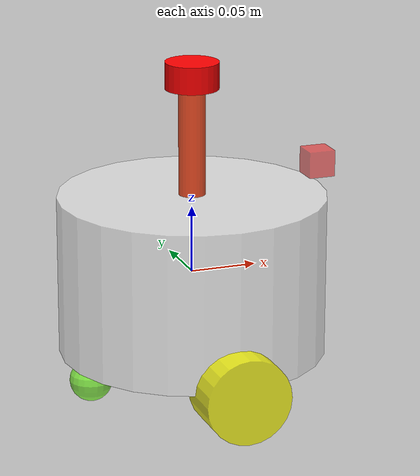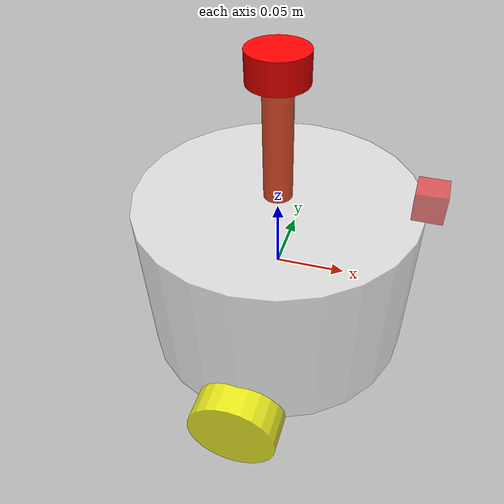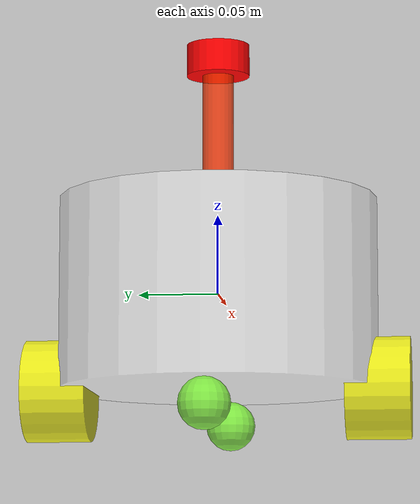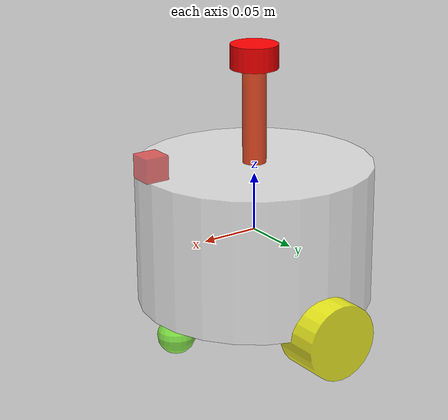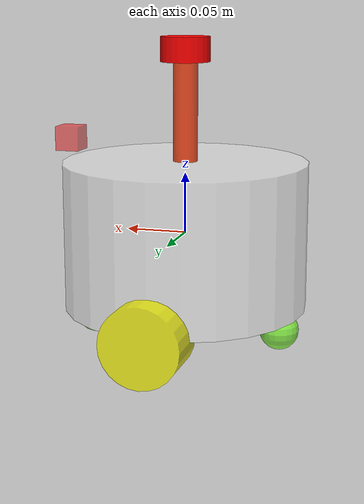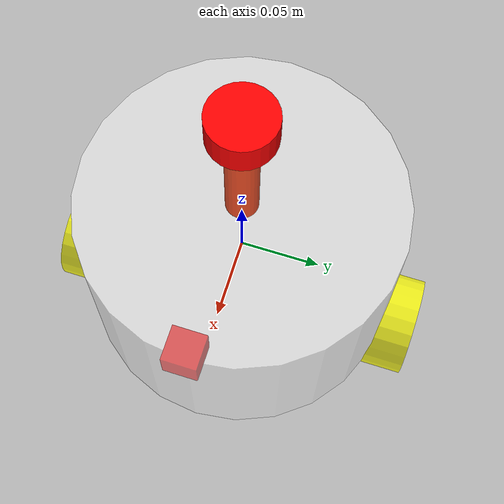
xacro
<?xml version="1.0"?>
<robot xmlns:xacro="http://www.ros.org/wiki/xacro" name="ano_robo">

    <!--find 加包名字-->
    <xacro:include filename="$(find my_robo_description)/URDF/base.urdf.xacro"/>
    <!--传感器组建-->
    <xacro:include filename="$(find my_robo_description)/URDF/sensor/camera.urdf.xacro"/>
    <xacro:include filename="$(find my_robo_description)/URDF/sensor/imu.urdf.xacro"/>
    <xacro:include filename="$(find my_robo_description)/URDF/sensor/lidar.urdf.xacro"/>
    <!--执行部分  2个轮子 2个万向轮-->
    <xacro:include filename="$(find my_robo_description)/URDF/body_/wheel.urdf.xacro"/>
    <xacro:include filename="$(find my_robo_description)/URDF/body_/wheel_wangxianglun.urdf.xacro"/>

    <xacro:base_xacro length="0.12" radius="0.1"/>
    <!--传感器-->
    <xacro:imu_xacro xyz="0 0 0.02"/>
    <xacro:lidar_xacro xyz="0 0 0.1"/>
    <xacro:camera_xacro xyz="0.1 0 0.075"/>
    <xacro:wheel_xacro wheel_name="left_wheel" xyz="0 0.1 -0.06"/>
    <xacro:wheel_xacro wheel_name="right_wheel" xyz="0 -0.1 -0.06"/>
    <xacro:wheel_wangxianglun_xacro wheel_wangxianglun_name="right_wangxianglun_name" xyz="0.08 0 -0.076"/>
    <xacro:wheel_wangxianglun_xacro wheel_wangxianglun_name="left_wangxianglun_name" xyz="-0.08 0 -0.076"/>

</robot>

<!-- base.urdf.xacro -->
<robot xmlns:xacro="http://www.ros.org/wiki/xacro" >
    <!-- 定义 base_link 宏 -->
    <xacro:macro name="base_xacro" params="length radius">
        <!-- 机器人的身体部分 -->
        <link name="base_link">
            <!-- 部件的外观描述 -->
            <visual>
                <!-- 沿着自己几何中心的偏移旋转量 -->
                <origin xyz="0.0 0.0 0.0" rpy="0.0 0.0 0.0"/>
                <!-- 几何形状 -->
                <geometry>
                    <!-- 圆柱体 半径0.1 高度 0.12 -->
                    <cylinder radius="${radius}" length="${length}"/>
                </geometry>
                <!-- 材质 颜色描述 -->
                <material name="white">
                    <!-- 设置透明为 0.5 -->
                    <color rgba="1.0 1.0 1.0 0.5"/>
                </material>
            </visual>
        </link>
    </xacro:macro>
</robot>

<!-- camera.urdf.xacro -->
<robot xmlns:xacro="http://www.ros.org/wiki/xacro" >
    <!-- 定义 imu_link 宏 -->
    <xacro:macro name="camera_xacro" params=" xyz">
        <!-- 机器人IMU 部件 惯性测量单元传感器 -->
        <link name="camera_link">
            <!-- 部件的外观描述 -->
            <visual>
                <!-- 沿着自己几何中心的偏移旋转量 -->
                <origin xyz="0.0 0.0 0.0" rpy="0.0 0.0 0.0"/>
                <!-- 几何形状 -->
                <geometry>
                    <!-- box 自己自动生成的 正方体 -->
                    <box size="0.02 0.02 0.02"/>
                </geometry>
                <!-- 材质 颜色描述 -->
                <material name="red">
                    <!-- 设置透明为 0.5 -->
                    <color rgba="1.0 0.0 0.0 0.5"/>
                </material>
            </visual>
            <collision>
                 <!-- 沿着自己几何中心的偏移旋转量 -->
                <origin xyz="0.0 0.0 0.0" rpy="0.0 0.0 0.0"/>
                <!-- 几何形状 -->
                <geometry>
                    <!-- box 自己自动生成的 正方体 -->
                    <box size="0.02 0.02 0.02"/>
                </geometry>
                <!-- 材质 颜色描述 -->
                <material name="red">
                    <!-- 设置透明为 0.5 -->
                    <color rgba="1.0 0.0 0.0 0.5"/>
                </material>
            </collision>
        </link>
        <!-- 机器人的关节 用于组合机器人的部件 -->
        <joint name="camera_joint" type="fixed">
            <parent link="base_link"/>
            <child link="camera_link"/>
            <origin xyz="${xyz}" rpy="0.0 0.0 0.0"/>
        </joint>
    </xacro:macro>
</robot>

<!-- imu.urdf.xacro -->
<robot xmlns:xacro="http://www.ros.org/wiki/xacro" >
    <!-- 定义 imu_link 宏 -->
    <xacro:macro name="imu_xacro" params=" xyz">
        <!-- 机器人IMU 部件 惯性测量单元传感器 -->
        <link name="imu_link">
            <!-- 部件的外观描述 -->
            <visual>
                <!-- 沿着自己几何中心的偏移旋转量 -->
                <origin xyz="0.0 0.0 0.0" rpy="0.0 0.0 0.0"/>
                <!-- 几何形状 -->
                <geometry>
                    <!-- box 自己自动生成的 正方体 -->
                    <box size="0.02 0.02 0.02"/>
                </geometry>
                <!-- 材质 颜色描述 -->
                <material name="red">
                    <!-- 设置透明为 0.5 -->
                    <color rgba="1.0 0.0 0.0 0.5"/>
                </material>
            </visual>
            <!--增加碰撞属性-->
            <collision>
                     <!-- 沿着自己几何中心的偏移旋转量 -->
                <origin xyz="0.0 0.0 0.0" rpy="0.0 0.0 0.0"/>
                <!-- 几何形状 -->
                <geometry>
                    <!-- box 自己自动生成的 正方体 -->
                    <box size="0.02 0.02 0.02"/>
                </geometry>
                <!-- 材质 颜色描述 -->
                <material name="red">
                    <!-- 设置透明为 0.5 -->
                    <color rgba="1.0 0.0 0.0 0.5"/>
                </material>
            </collision>
        </link>
        <!-- 机器人的关节 用于组合机器人的部件 -->
        <joint name="imu_joint" type="fixed">
            <parent link="base_link"/>
            <child link="imu_link"/>
            <origin xyz="${xyz}" rpy="0.0 0.0 0.0"/>
        </joint>
    </xacro:macro>
</robot>

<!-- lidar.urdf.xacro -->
<robot xmlns:xacro="http://www.ros.org/wiki/xacro" >
    <xacro:macro name="lidar_xacro" params=" xyz">
        <!-- 雷达支撑杆 -->
        <link name="lidar_insist_link">
            <!-- 部件的外观描述 -->
            <visual>
                <!-- 沿着自己几何中心的偏移旋转量 -->
                <origin xyz="0.0 0.0 0.0" rpy="0.0 0.0 0.0"/>
                <!-- 几何形状 -->
                <geometry>
                    <!-- box 自己自动生成的 正方体 -->
                    <cylinder radius="0.01" length="0.10"/>
                </geometry>
                <!-- 材质 颜色描述 -->
                <material name="green">
                    <!-- 设置透明为 0.5 -->
                    <color rgba="1.0 0.2 0.0 0.8"/>
                </material>
            </visual>
            <!--增加碰撞属性-->
            <collision>
                <!-- 沿着自己几何中心的偏移旋转量 -->
                <origin xyz="0.0 0.0 0.0" rpy="0.0 0.0 0.0"/>
                <!-- 几何形状 -->
                <geometry>
                    <!-- box 自己自动生成的 正方体 -->
                    <cylinder radius="0.01" length="0.10"/>
                </geometry>
                <!-- 材质 颜色描述 -->
                <material name="green">
                    <!-- 设置透明为 0.5 -->
                    <color rgba="1.0 0.2 0.0 0.8"/>
                </material>
            </collision>
        </link>

        <!-- 雷达 -->
        <link name="lidar__link">
            <!-- 部件的外观描述 -->
            <visual>
                <!-- 沿着自己几何中心的偏移旋转量 -->
                <origin xyz="0.0 0.0 0.0" rpy="0.0 0.0 0.0"/>
                <!-- 几何形状 -->
                <geometry>
                    <!-- box 自己自动生成的 正方体 -->
                    <cylinder radius="0.02" length="0.02"/>
                </geometry>
                <!-- 材质 颜色描述 -->
                <material name="yellow">
                    <!-- 设置透明为 0.5 -->
                    <color rgba="1.0 0.0 0.0 1.0"/>
                </material>
            </visual>
            <!--增加碰撞属性-->
            <collision>
                <!-- 沿着自己几何中心的偏移旋转量 -->
                <origin xyz="0.0 0.0 0.0" rpy="0.0 0.0 0.0"/>
                <!-- 几何形状 -->
                <geometry>
                    <!-- box 自己自动生成的 正方体 -->
                    <cylinder radius="0.02" length="0.02"/>
                </geometry>
                <!-- 材质 颜色描述 -->
                <material name="yellow">
                    <!-- 设置透明为 0.5 -->
                    <color rgba="1.0 0.0 0.0 1.0"/>
                </material>
            </collision>

        </link>

        <!-- 机器人的关节 用于组合机器人的部件 -->
        <joint name="lidar_joint" type="fixed">
            <parent link="lidar_insist_link"/>
            <child link="lidar__link"/>
            <origin xyz="0.0 0.0 0.05" rpy="0.0 0.0 0.0"/>
        </joint>

        <joint name="lidar_insist_joint" type="fixed">
            <parent link="base_link"/>
            <child link="lidar_insist_link"/>
            <origin xyz="${xyz}" rpy="0.0 0.0 0.0"/>
        </joint>
    </xacro:macro>
</robot>

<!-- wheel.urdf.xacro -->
<robot xmlns:xacro="http://www.ros.org/wiki/xacro" >
    <!-- 定义 imu_link 宏 -->
    <xacro:macro name="wheel_xacro" params="wheel_name xyz">
        <!-- 机器人IMU 部件 惯性测量单元传感器 -->
        <link name="${wheel_name}_link">
            <!-- 部件的外观描述 -->
            <visual>
                <!-- 沿着自己几何中心的偏移旋转量 -->
                <origin xyz="0.0 0.0 0.0" rpy="1.57079 0.0 0.0"/>
                <!-- 几何形状 -->
                <geometry>
                    <!-- box 自己自动生成的 正方体 -->
                    <cylinder radius="0.032" length="0.04"/>
                </geometry>
                <!-- 材质 颜色描述 -->
                <material name="yellow">
                    <!-- 设置透明为 0.5 -->
                    <color rgba="1.0 1.0 0.0 0.8"/>
                </material>
            </visual>
        </link>
        <!-- 机器人的关节 用于组合机器人的部件 -->
        <joint name="${wheel_name}_joint" type="continuous">
            <parent link="base_link"/>
            <child link="${wheel_name}_link"/>
            <origin xyz="${xyz}" rpy="0.0 0.0 0.0"/>
            <axis xyz="0 1 0"/>
        </joint>
    </xacro:macro>
</robot>

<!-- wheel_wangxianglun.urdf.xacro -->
<robot xmlns:xacro="http://www.ros.org/wiki/xacro" >
    <!-- 定义 imu_link 宏 -->
    <xacro:macro name="wheel_wangxianglun_xacro" params="wheel_wangxianglun_name xyz">
        <!-- 机器人IMU 部件 惯性测量单元传感器 -->
        <link name="${wheel_wangxianglun_name}_link">
            <!-- 部件的外观描述 -->
            <visual>
                <!-- 沿着自己几何中心的偏移旋转量 -->
                <origin xyz="0.0 0.0 0.0" rpy="0.0 0.0 0.0"/>
                <!-- 几何形状 -->
                <geometry>
                    <!-- box 自己自动生成的 正方体 -->
                    <sphere radius="0.016"/>  <!--球体 半径为0.016-->
                </geometry>
                <!-- 材质 颜色描述 -->
                <material name="yellow">
                    <!-- 设置透明为 0.5 -->
                    <color rgba="0.5 1.0 0.2 0.8"/>
                </material>
            </visual>
        </link>
        <!-- 机器人的关节 用于组合机器人的部件 -->
        <joint name="${wheel_wangxianglun_name}_joint" type="fixed">
            <parent link="base_link"/>
            <child link="${wheel_wangxianglun_name}_link"/>
            <origin xyz="${xyz}" rpy="0.0 0.0 0.0"/>
            <axis xyz="0 1 0"/>
        </joint>
    </xacro:macro>
</robot>
